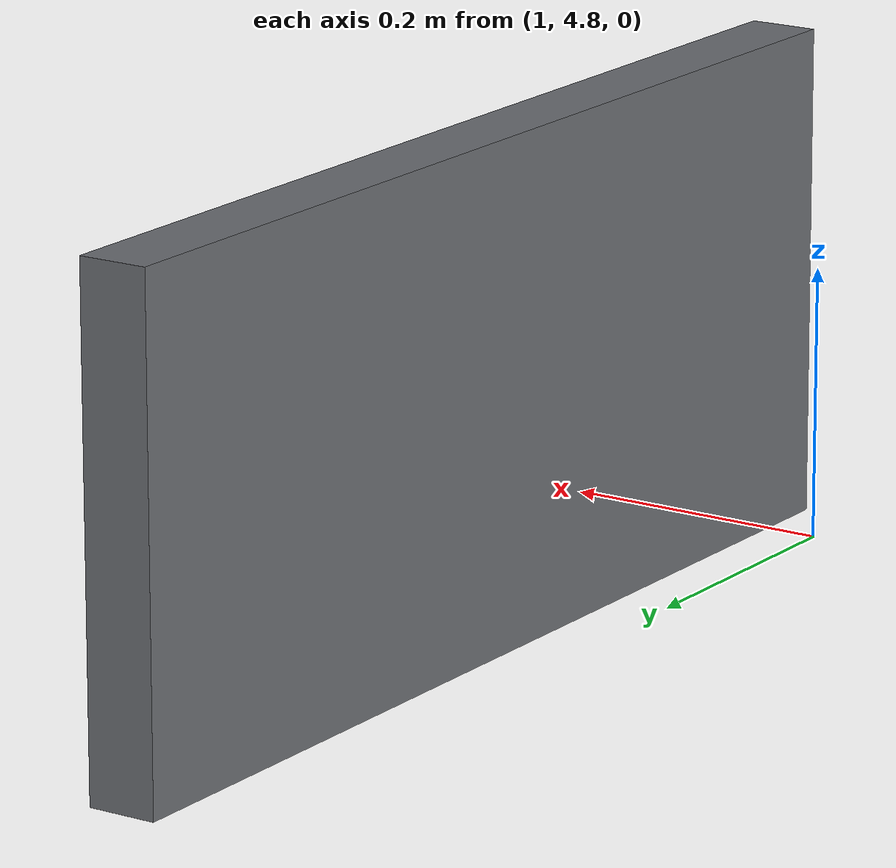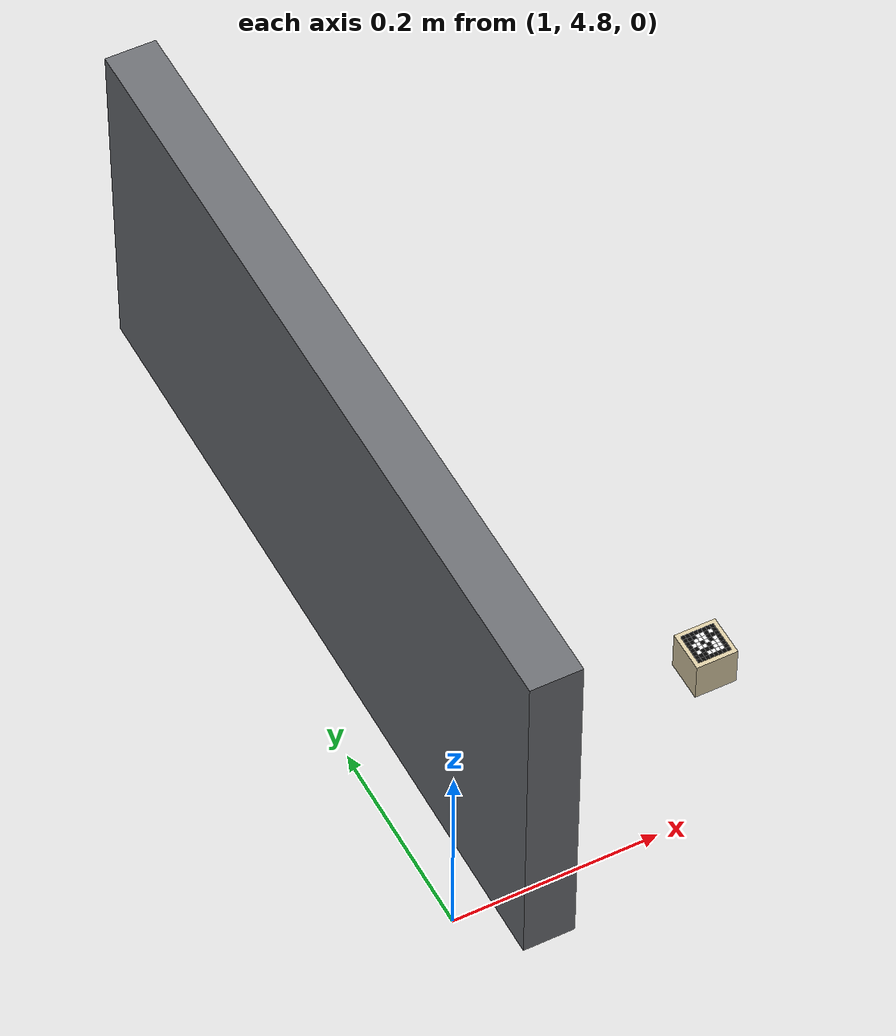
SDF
<sdf version="1.9">
 <world name="arena">
  <model name="map_wall_3">
   <static>true</static>
   <pose>1.06400 5.14500 0.18000 0 0 0.0000000</pose>
   <link name="body">
    <collision name="collision"><geometry><box><size>0.05000 0.80000 0.36000</size></box></geometry></collision>
    <visual name="appearance">
     <geometry><box><size>0.05000 0.80000 0.36000</size></box></geometry>
     <material><ambient>0.42 0.43 0.45 1</ambient><diffuse>0.42 0.43 0.45 1</diffuse></material>
    </visual>
   </link>
  </model>
  <model name="cube_4">
   <pose>1.09626 4.82973 0.18200 0 0 0</pose>
   <link name="body">
    <inertial>
     <mass>0.04</mass>
     <inertia>
      <ixx>0.000010667</ixx>
      <iyy>0.000010667</iyy>
      <izz>0.000010667</izz>
      <ixy>0</ixy>
      <ixz>0</ixz>
      <iyz>0</iyz>
     </inertia>
    </inertial>
    <collision name="cube">
     <geometry><box><size>0.04 0.04 0.04</size></box></geometry>
     <surface><friction><ode><mu>1.2</mu><mu2>1.2</mu2></ode></friction></surface>
    </collision>
    <visual name="cube_appearance">
     <geometry><box><size>0.04 0.04 0.04</size></box></geometry>
     <material><ambient>0.85 0.79 0.64 1</ambient><diffuse>0.85 0.79 0.64 1</diffuse></material>
    </visual>
    <visual name="tag_0_0">
     <pose>-0.0140 0.0140 0.0202 0 0 0</pose>
     <geometry><plane><normal>0 0 1</normal><size>0.004 0.004</size></plane></geometry>
     <material><ambient>0.01 0.01 0.01 1</ambient><diffuse>0.01 0.01 0.01 1</diffuse></material>
    </visual>
    <visual name="tag_0_1">
     <pose>-0.0100 0.0140 0.0202 0 0 0</pose>
     <geometry><plane><normal>0 0 1</normal><size>0.004 0.004</size></plane></geometry>
     <material><ambient>0.01 0.01 0.01 1</ambient><diffuse>0.01 0.01 0.01 1</diffuse></material>
    </visual>
    <visual name="tag_0_2">
     <pose>-0.0060 0.0140 0.0202 0 0 0</pose>
     <geometry><plane><normal>0 0 1</normal><size>0.004 0.004</size></plane></geometry>
     <material><ambient>0.01 0.01 0.01 1</ambient><diffuse>0.01 0.01 0.01 1</diffuse></material>
    </visual>
    <visual name="tag_0_3">
     <pose>-0.0020 0.0140 0.0202 0 0 0</pose>
     <geometry><plane><normal>0 0 1</normal><size>0.004 0.004</size></plane></geometry>
     <material><ambient>0.01 0.01 0.01 1</ambient><diffuse>0.01 0.01 0.01 1</diffuse></material>
    </visual>
    <visual name="tag_0_4">
     <pose>0.0020 0.0140 0.0202 0 0 0</pose>
     <geometry><plane><normal>0 0 1</normal><size>0.004 0.004</size></plane></geometry>
     <material><ambient>0.01 0.01 0.01 1</ambient><diffuse>0.01 0.01 0.01 1</diffuse></material>
    </visual>
    <visual name="tag_0_5">
     <pose>0.0060 0.0140 0.0202 0 0 0</pose>
     <geometry><plane><normal>0 0 1</normal><size>0.004 0.004</size></plane></geometry>
     <material><ambient>0.01 0.01 0.01 1</ambient><diffuse>0.01 0.01 0.01 1</diffuse></material>
    </visual>
    <visual name="tag_0_6">
     <pose>0.0100 0.0140 0.0202 0 0 0</pose>
     <geometry><plane><normal>0 0 1</normal><size>0.004 0.004</size></plane></geometry>
     <material><ambient>0.01 0.01 0.01 1</ambient><diffuse>0.01 0.01 0.01 1</diffuse></material>
    </visual>
    <visual name="tag_0_7">
     <pose>0.0140 0.0140 0.0202 0 0 0</pose>
     <geometry><plane><normal>0 0 1</normal><size>0.004 0.004</size></plane></geometry>
     <material><ambient>0.01 0.01 0.01 1</ambient><diffuse>0.01 0.01 0.01 1</diffuse></material>
    </visual>
    <visual name="tag_1_0">
     <pose>-0.0140 0.0100 0.0202 0 0 0</pose>
     <geometry><plane><normal>0 0 1</normal><size>0.004 0.004</size></plane></geometry>
     <material><ambient>0.01 0.01 0.01 1</ambient><diffuse>0.01 0.01 0.01 1</diffuse></material>
    </visual>
    <visual name="tag_1_1">
     <pose>-0.0100 0.0100 0.0202 0 0 0</pose>
     <geometry><plane><normal>0 0 1</normal><size>0.004 0.004</size></plane></geometry>
     <material><ambient>0.01 0.01 0.01 1</ambient><diffuse>0.01 0.01 0.01 1</diffuse></material>
    </visual>
    <visual name="tag_1_2">
     <pose>-0.0060 0.0100 0.0202 0 0 0</pose>
     <geometry><plane><normal>0 0 1</normal><size>0.004 0.004</size></plane></geometry>
     <material><ambient>0.95 0.95 0.95 1</ambient><diffuse>0.95 0.95 0.95 1</diffuse></material>
    </visual>
    <visual name="tag_1_3">
     <pose>-0.0020 0.0100 0.0202 0 0 0</pose>
     <geometry><plane><normal>0 0 1</normal><size>0.004 0.004</size></plane></geometry>
     <material><ambient>0.01 0.01 0.01 1</ambient><diffuse>0.01 0.01 0.01 1</diffuse></material>
    </visual>
    <visual name="tag_1_4">
     <pose>0.0020 0.0100 0.0202 0 0 0</pose>
     <geometry><plane><normal>0 0 1</normal><size>0.004 0.004</size></plane></geometry>
     <material><ambient>0.01 0.01 0.01 1</ambient><diffuse>0.01 0.01 0.01 1</diffuse></material>
    </visual>
    <visual name="tag_1_5">
     <pose>0.0060 0.0100 0.0202 0 0 0</pose>
     <geometry><plane><normal>0 0 1</normal><size>0.004 0.004</size></plane></geometry>
     <material><ambient>0.01 0.01 0.01 1</ambient><diffuse>0.01 0.01 0.01 1</diffuse></material>
    </visual>
    <visual name="tag_1_6">
     <pose>0.0100 0.0100 0.0202 0 0 0</pose>
     <geometry><plane><normal>0 0 1</normal><size>0.004 0.004</size></plane></geometry>
     <material><ambient>0.95 0.95 0.95 1</ambient><diffuse>0.95 0.95 0.95 1</diffuse></material>
    </visual>
    <visual name="tag_1_7">
     <pose>0.0140 0.0100 0.0202 0 0 0</pose>
     <geometry><plane><normal>0 0 1</normal><size>0.004 0.004</size></plane></geometry>
     <material><ambient>0.01 0.01 0.01 1</ambient><diffuse>0.01 0.01 0.01 1</diffuse></material>
    </visual>
    <visual name="tag_2_0">
     <pose>-0.0140 0.0060 0.0202 0 0 0</pose>
     <geometry><plane><normal>0 0 1</normal><size>0.004 0.004</size></plane></geometry>
     <material><ambient>0.01 0.01 0.01 1</ambient><diffuse>0.01 0.01 0.01 1</diffuse></material>
    </visual>
    <visual name="tag_2_1">
     <pose>-0.0100 0.0060 0.0202 0 0 0</pose>
     <geometry><plane><normal>0 0 1</normal><size>0.004 0.004</size></plane></geometry>
     <material><ambient>0.01 0.01 0.01 1</ambient><diffuse>0.01 0.01 0.01 1</diffuse></material>
    </visual>
    <visual name="tag_2_2">
     <pose>-0.0060 0.0060 0.0202 0 0 0</pose>
     <geometry><plane><normal>0 0 1</normal><size>0.004 0.004</size></plane></geometry>
     <material><ambient>0.01 0.01 0.01 1</ambient><diffuse>0.01 0.01 0.01 1</diffuse></material>
    </visual>
    <visual name="tag_2_3">
     <pose>-0.0020 0.0060 0.0202 0 0 0</pose>
     <geometry><plane><normal>0 0 1</normal><size>0.004 0.004</size></plane></geometry>
     <material><ambient>0.01 0.01 0.01 1</ambient><diffuse>0.01 0.01 0.01 1</diffuse></material>
    </visual>
    <visual name="tag_2_4">
     <pose>0.0020 0.0060 0.0202 0 0 0</pose>
     <geometry><plane><normal>0 0 1</normal><size>0.004 0.004</size></plane></geometry>
     <material><ambient>0.01 0.01 0.01 1</ambient><diffuse>0.01 0.01 0.01 1</diffuse></material>
    </visual>
    <visual name="tag_2_5">
     <pose>0.0060 0.0060 0.0202 0 0 0</pose>
     <geometry><plane><normal>0 0 1</normal><size>0.004 0.004</size></plane></geometry>
     <material><ambient>0.01 0.01 0.01 1</ambient><diffuse>0.01 0.01 0.01 1</diffuse></material>
    </visual>
    <visual name="tag_2_6">
     <pose>0.0100 0.0060 0.0202 0 0 0</pose>
     <geometry><plane><normal>0 0 1</normal><size>0.004 0.004</size></plane></geometry>
     <material><ambient>0.95 0.95 0.95 1</ambient><diffuse>0.95 0.95 0.95 1</diffuse></material>
    </visual>
    <visual name="tag_2_7">
     <pose>0.0140 0.0060 0.0202 0 0 0</pose>
     <geometry><plane><normal>0 0 1</normal><size>0.004 0.004</size></plane></geometry>
     <material><ambient>0.01 0.01 0.01 1</ambient><diffuse>0.01 0.01 0.01 1</diffuse></material>
    </visual>
    <visual name="tag_3_0">
     <pose>-0.0140 0.0020 0.0202 0 0 0</pose>
     <geometry><plane><normal>0 0 1</normal><size>0.004 0.004</size></plane></geometry>
     <material><ambient>0.01 0.01 0.01 1</ambient><diffuse>0.01 0.01 0.01 1</diffuse></material>
    </visual>
    <visual name="tag_3_1">
     <pose>-0.0100 0.0020 0.0202 0 0 0</pose>
     <geometry><plane><normal>0 0 1</normal><size>0.004 0.004</size></plane></geometry>
     <material><ambient>0.01 0.01 0.01 1</ambient><diffuse>0.01 0.01 0.01 1</diffuse></material>
    </visual>
    <visual name="tag_3_2">
     <pose>-0.0060 0.0020 0.0202 0 0 0</pose>
     <geometry><plane><normal>0 0 1</normal><size>0.004 0.004</size></plane></geometry>
     <material><ambient>0.95 0.95 0.95 1</ambient><diffuse>0.95 0.95 0.95 1</diffuse></material>
    </visual>
    <visual name="tag_3_3">
     <pose>-0.0020 0.0020 0.0202 0 0 0</pose>
     <geometry><plane><normal>0 0 1</normal><size>0.004 0.004</size></plane></geometry>
     <material><ambient>0.01 0.01 0.01 1</ambient><diffuse>0.01 0.01 0.01 1</diffuse></material>
    </visual>
    <visual name="tag_3_4">
     <pose>0.0020 0.0020 0.0202 0 0 0</pose>
     <geometry><plane><normal>0 0 1</normal><size>0.004 0.004</size></plane></geometry>
     <material><ambient>0.95 0.95 0.95 1</ambient><diffuse>0.95 0.95 0.95 1</diffuse></material>
    </visual>
    <visual name="tag_3_5">
     <pose>0.0060 0.0020 0.0202 0 0 0</pose>
     <geometry><plane><normal>0 0 1</normal><size>0.004 0.004</size></plane></geometry>
     <material><ambient>0.01 0.01 0.01 1</ambient><diffuse>0.01 0.01 0.01 1</diffuse></material>
    </visual>
    <visual name="tag_3_6">
     <pose>0.0100 0.0020 0.0202 0 0 0</pose>
     <geometry><plane><normal>0 0 1</normal><size>0.004 0.004</size></plane></geometry>
     <material><ambient>0.01 0.01 0.01 1</ambient><diffuse>0.01 0.01 0.01 1</diffuse></material>
    </visual>
    <visual name="tag_3_7">
     <pose>0.0140 0.0020 0.0202 0 0 0</pose>
     <geometry><plane><normal>0 0 1</normal><size>0.004 0.004</size></plane></geometry>
     <material><ambient>0.01 0.01 0.01 1</ambient><diffuse>0.01 0.01 0.01 1</diffuse></material>
    </visual>
    <visual name="tag_4_0">
     <pose>-0.0140 -0.0020 0.0202 0 0 0</pose>
     <geometry><plane><normal>0 0 1</normal><size>0.004 0.004</size></plane></geometry>
     <material><ambient>0.01 0.01 0.01 1</ambient><diffuse>0.01 0.01 0.01 1</diffuse></material>
    </visual>
    <visual name="tag_4_1">
     <pose>-0.0100 -0.0020 0.0202 0 0 0</pose>
     <geometry><plane><normal>0 0 1</normal><size>0.004 0.004</size></plane></geometry>
     <material><ambient>0.95 0.95 0.95 1</ambient><diffuse>0.95 0.95 0.95 1</diffuse></material>
    </visual>
    <visual name="tag_4_2">
     <pose>-0.0060 -0.0020 0.0202 0 0 0</pose>
     <geometry><plane><normal>0 0 1</normal><size>0.004 0.004</size></plane></geometry>
     <material><ambient>0.95 0.95 0.95 1</ambient><diffuse>0.95 0.95 0.95 1</diffuse></material>
    </visual>
    <visual name="tag_4_3">
     <pose>-0.0020 -0.0020 0.0202 0 0 0</pose>
     <geometry><plane><normal>0 0 1</normal><size>0.004 0.004</size></plane></geometry>
     <material><ambient>0.95 0.95 0.95 1</ambient><diffuse>0.95 0.95 0.95 1</diffuse></material>
    </visual>
    <visual name="tag_4_4">
     <pose>0.0020 -0.0020 0.0202 0 0 0</pose>
     <geometry><plane><normal>0 0 1</normal><size>0.004 0.004</size></plane></geometry>
     <material><ambient>0.95 0.95 0.95 1</ambient><diffuse>0.95 0.95 0.95 1</diffuse></material>
    </visual>
    <visual name="tag_4_5">
     <pose>0.0060 -0.0020 0.0202 0 0 0</pose>
     <geometry><plane><normal>0 0 1</normal><size>0.004 0.004</size></plane></geometry>
     <material><ambient>0.01 0.01 0.01 1</ambient><diffuse>0.01 0.01 0.01 1</diffuse></material>
    </visual>
    <visual name="tag_4_6">
     <pose>0.0100 -0.0020 0.0202 0 0 0</pose>
     <geometry><plane><normal>0 0 1</normal><size>0.004 0.004</size></plane></geometry>
     <material><ambient>0.95 0.95 0.95 1</ambient><diffuse>0.95 0.95 0.95 1</diffuse></material>
    </visual>
    <visual name="tag_4_7">
     <pose>0.0140 -0.0020 0.0202 0 0 0</pose>
     <geometry><plane><normal>0 0 1</normal><size>0.004 0.004</size></plane></geometry>
     <material><ambient>0.01 0.01 0.01 1</ambient><diffuse>0.01 0.01 0.01 1</diffuse></material>
    </visual>
    <visual name="tag_5_0">
     <pose>-0.0140 -0.0060 0.0202 0 0 0</pose>
     <geometry><plane><normal>0 0 1</normal><size>0.004 0.004</size></plane></geometry>
     <material><ambient>0.01 0.01 0.01 1</ambient><diffuse>0.01 0.01 0.01 1</diffuse></material>
    </visual>
    <visual name="tag_5_1">
     <pose>-0.0100 -0.0060 0.0202 0 0 0</pose>
     <geometry><plane><normal>0 0 1</normal><size>0.004 0.004</size></plane></geometry>
     <material><ambient>0.01 0.01 0.01 1</ambient><diffuse>0.01 0.01 0.01 1</diffuse></material>
    </visual>
    <visual name="tag_5_2">
     <pose>-0.0060 -0.0060 0.0202 0 0 0</pose>
     <geometry><plane><normal>0 0 1</normal><size>0.004 0.004</size></plane></geometry>
     <material><ambient>0.01 0.01 0.01 1</ambient><diffuse>0.01 0.01 0.01 1</diffuse></material>
    </visual>
    <visual name="tag_5_3">
     <pose>-0.0020 -0.0060 0.0202 0 0 0</pose>
     <geometry><plane><normal>0 0 1</normal><size>0.004 0.004</size></plane></geometry>
     <material><ambient>0.95 0.95 0.95 1</ambient><diffuse>0.95 0.95 0.95 1</diffuse></material>
    </visual>
    <visual name="tag_5_4">
     <pose>0.0020 -0.0060 0.0202 0 0 0</pose>
     <geometry><plane><normal>0 0 1</normal><size>0.004 0.004</size></plane></geometry>
     <material><ambient>0.95 0.95 0.95 1</ambient><diffuse>0.95 0.95 0.95 1</diffuse></material>
    </visual>
    <visual name="tag_5_5">
     <pose>0.0060 -0.0060 0.0202 0 0 0</pose>
     <geometry><plane><normal>0 0 1</normal><size>0.004 0.004</size></plane></geometry>
     <material><ambient>0.95 0.95 0.95 1</ambient><diffuse>0.95 0.95 0.95 1</diffuse></material>
    </visual>
    <visual name="tag_5_6">
     <pose>0.0100 -0.0060 0.0202 0 0 0</pose>
     <geometry><plane><normal>0 0 1</normal><size>0.004 0.004</size></plane></geometry>
     <material><ambient>0.95 0.95 0.95 1</ambient><diffuse>0.95 0.95 0.95 1</diffuse></material>
    </visual>
    <visual name="tag_5_7">
     <pose>0.0140 -0.0060 0.0202 0 0 0</pose>
     <geometry><plane><normal>0 0 1</normal><size>0.004 0.004</size></plane></geometry>
     <material><ambient>0.01 0.01 0.01 1</ambient><diffuse>0.01 0.01 0.01 1</diffuse></material>
    </visual>
    <visual name="tag_6_0">
     <pose>-0.0140 -0.0100 0.0202 0 0 0</pose>
     <geometry><plane><normal>0 0 1</normal><size>0.004 0.004</size></plane></geometry>
     <material><ambient>0.01 0.01 0.01 1</ambient><diffuse>0.01 0.01 0.01 1</diffuse></material>
    </visual>
    <visual name="tag_6_1">
     <pose>-0.0100 -0.0100 0.0202 0 0 0</pose>
     <geometry><plane><normal>0 0 1</normal><size>0.004 0.004</size></plane></geometry>
     <material><ambient>0.01 0.01 0.01 1</ambient><diffuse>0.01 0.01 0.01 1</diffuse></material>
    </visual>
    <visual name="tag_6_2">
     <pose>-0.0060 -0.0100 0.0202 0 0 0</pose>
     <geometry><plane><normal>0 0 1</normal><size>0.004 0.004</size></plane></geometry>
     <material><ambient>0.95 0.95 0.95 1</ambient><diffuse>0.95 0.95 0.95 1</diffuse></material>
    </visual>
    <visual name="tag_6_3">
     <pose>-0.0020 -0.0100 0.0202 0 0 0</pose>
     <geometry><plane><normal>0 0 1</normal><size>0.004 0.004</size></plane></geometry>
     <material><ambient>0.01 0.01 0.01 1</ambient><diffuse>0.01 0.01 0.01 1</diffuse></material>
    </visual>
    <visual name="tag_6_4">
     <pose>0.0020 -0.0100 0.0202 0 0 0</pose>
     <geometry><plane><normal>0 0 1</normal><size>0.004 0.004</size></plane></geometry>
     <material><ambient>0.95 0.95 0.95 1</ambient><diffuse>0.95 0.95 0.95 1</diffuse></material>
    </visual>
    <visual name="tag_6_5">
     <pose>0.0060 -0.0100 0.0202 0 0 0</pose>
     <geometry><plane><normal>0 0 1</normal><size>0.004 0.004</size></plane></geometry>
     <material><ambient>0.95 0.95 0.95 1</ambient><diffuse>0.95 0.95 0.95 1</diffuse></material>
    </visual>
    <visual name="tag_6_6">
     <pose>0.0100 -0.0100 0.0202 0 0 0</pose>
     <geometry><plane><normal>0 0 1</normal><size>0.004 0.004</size></plane></geometry>
     <material><ambient>0.95 0.95 0.95 1</ambient><diffuse>0.95 0.95 0.95 1</diffuse></material>
    </visual>
    <visual name="tag_6_7">
     <pose>0.0140 -0.0100 0.0202 0 0 0</pose>
     <geometry><plane><normal>0 0 1</normal><size>0.004 0.004</size></plane></geometry>
     <material><ambient>0.01 0.01 0.01 1</ambient><diffuse>0.01 0.01 0.01 1</diffuse></material>
    </visual>
    <visual name="tag_7_0">
     <pose>-0.0140 -0.0140 0.0202 0 0 0</pose>
     <geometry><plane><normal>0 0 1</normal><size>0.004 0.004</size></plane></geometry>
     <material><ambient>0.01 0.01 0.01 1</ambient><diffuse>0.01 0.01 0.01 1</diffuse></material>
    </visual>
    <visual name="tag_7_1">
     <pose>-0.0100 -0.0140 0.0202 0 0 0</pose>
     <geometry><plane><normal>0 0 1</normal><size>0.004 0.004</size></plane></geometry>
     <material><ambient>0.01 0.01 0.01 1</ambient><diffuse>0.01 0.01 0.01 1</diffuse></material>
    </visual>
    <visual name="tag_7_2">
     <pose>-0.0060 -0.0140 0.0202 0 0 0</pose>
     <geometry><plane><normal>0 0 1</normal><size>0.004 0.004</size></plane></geometry>
     <material><ambient>0.01 0.01 0.01 1</ambient><diffuse>0.01 0.01 0.01 1</diffuse></material>
    </visual>
    <visual name="tag_7_3">
     <pose>-0.0020 -0.0140 0.0202 0 0 0</pose>
     <geometry><plane><normal>0 0 1</normal><size>0.004 0.004</size></plane></geometry>
     <material><ambient>0.01 0.01 0.01 1</ambient><diffuse>0.01 0.01 0.01 1</diffuse></material>
    </visual>
    <visual name="tag_7_4">
     <pose>0.0020 -0.0140 0.0202 0 0 0</pose>
     <geometry><plane><normal>0 0 1</normal><size>0.004 0.004</size></plane></geometry>
     <material><ambient>0.01 0.01 0.01 1</ambient><diffuse>0.01 0.01 0.01 1</diffuse></material>
    </visual>
    <visual name="tag_7_5">
     <pose>0.0060 -0.0140 0.0202 0 0 0</pose>
     <geometry><plane><normal>0 0 1</normal><size>0.004 0.004</size></plane></geometry>
     <material><ambient>0.01 0.01 0.01 1</ambient><diffuse>0.01 0.01 0.01 1</diffuse></material>
    </visual>
    <visual name="tag_7_6">
     <pose>0.0100 -0.0140 0.0202 0 0 0</pose>
     <geometry><plane><normal>0 0 1</normal><size>0.004 0.004</size></plane></geometry>
     <material><ambient>0.01 0.01 0.01 1</ambient><diffuse>0.01 0.01 0.01 1</diffuse></material>
    </visual>
    <visual name="tag_7_7">
     <pose>0.0140 -0.0140 0.0202 0 0 0</pose>
     <geometry><plane><normal>0 0 1</normal><size>0.004 0.004</size></plane></geometry>
     <material><ambient>0.01 0.01 0.01 1</ambient><diffuse>0.01 0.01 0.01 1</diffuse></material>
    </visual>
   </link>
  </model>
  <model name="cube_5">
   <pose>1.25626 4.82986 0.18200 0 0 0</pose>
   <link name="body">
    <inertial>
     <mass>0.04</mass>
     <inertia>
      <ixx>0.000010667</ixx>
      <iyy>0.000010667</iyy>
      <izz>0.000010667</izz>
      <ixy>0</ixy>
      <ixz>0</ixz>
      <iyz>0</iyz>
     </inertia>
    </inertial>
    <collision name="cube">
     <geometry><box><size>0.04 0.04 0.04</size></box></geometry>
     <surface><friction><ode><mu>1.2</mu><mu2>1.2</mu2></ode></friction></surface>
    </collision>
    <visual name="cube_appearance">
     <geometry><box><size>0.04 0.04 0.04</size></box></geometry>
     <material><ambient>0.85 0.79 0.64 1</ambient><diffuse>0.85 0.79 0.64 1</diffuse></material>
    </visual>
    <visual name="tag_0_0">
     <pose>-0.0140 0.0140 0.0202 0 0 0</pose>
     <geometry><plane><normal>0 0 1</normal><size>0.004 0.004</size></plane></geometry>
     <material><ambient>0.01 0.01 0.01 1</ambient><diffuse>0.01 0.01 0.01 1</diffuse></material>
    </visual>
    <visual name="tag_0_1">
     <pose>-0.0100 0.0140 0.0202 0 0 0</pose>
     <geometry><plane><normal>0 0 1</normal><size>0.004 0.004</size></plane></geometry>
     <material><ambient>0.01 0.01 0.01 1</ambient><diffuse>0.01 0.01 0.01 1</diffuse></material>
    </visual>
    <visual name="tag_0_2">
     <pose>-0.0060 0.0140 0.0202 0 0 0</pose>
     <geometry><plane><normal>0 0 1</normal><size>0.004 0.004</size></plane></geometry>
     <material><ambient>0.01 0.01 0.01 1</ambient><diffuse>0.01 0.01 0.01 1</diffuse></material>
    </visual>
    <visual name="tag_0_3">
     <pose>-0.0020 0.0140 0.0202 0 0 0</pose>
     <geometry><plane><normal>0 0 1</normal><size>0.004 0.004</size></plane></geometry>
     <material><ambient>0.01 0.01 0.01 1</ambient><diffuse>0.01 0.01 0.01 1</diffuse></material>
    </visual>
    <visual name="tag_0_4">
     <pose>0.0020 0.0140 0.0202 0 0 0</pose>
     <geometry><plane><normal>0 0 1</normal><size>0.004 0.004</size></plane></geometry>
     <material><ambient>0.01 0.01 0.01 1</ambient><diffuse>0.01 0.01 0.01 1</diffuse></material>
    </visual>
    <visual name="tag_0_5">
     <pose>0.0060 0.0140 0.0202 0 0 0</pose>
     <geometry><plane><normal>0 0 1</normal><size>0.004 0.004</size></plane></geometry>
     <material><ambient>0.01 0.01 0.01 1</ambient><diffuse>0.01 0.01 0.01 1</diffuse></material>
    </visual>
    <visual name="tag_0_6">
     <pose>0.0100 0.0140 0.0202 0 0 0</pose>
     <geometry><plane><normal>0 0 1</normal><size>0.004 0.004</size></plane></geometry>
     <material><ambient>0.01 0.01 0.01 1</ambient><diffuse>0.01 0.01 0.01 1</diffuse></material>
    </visual>
    <visual name="tag_0_7">
     <pose>0.0140 0.0140 0.0202 0 0 0</pose>
     <geometry><plane><normal>0 0 1</normal><size>0.004 0.004</size></plane></geometry>
     <material><ambient>0.01 0.01 0.01 1</ambient><diffuse>0.01 0.01 0.01 1</diffuse></material>
    </visual>
    <visual name="tag_1_0">
     <pose>-0.0140 0.0100 0.0202 0 0 0</pose>
     <geometry><plane><normal>0 0 1</normal><size>0.004 0.004</size></plane></geometry>
     <material><ambient>0.01 0.01 0.01 1</ambient><diffuse>0.01 0.01 0.01 1</diffuse></material>
    </visual>
    <visual name="tag_1_1">
     <pose>-0.0100 0.0100 0.0202 0 0 0</pose>
     <geometry><plane><normal>0 0 1</normal><size>0.004 0.004</size></plane></geometry>
     <material><ambient>0.01 0.01 0.01 1</ambient><diffuse>0.01 0.01 0.01 1</diffuse></material>
    </visual>
    <visual name="tag_1_2">
     <pose>-0.0060 0.0100 0.0202 0 0 0</pose>
     <geometry><plane><normal>0 0 1</normal><size>0.004 0.004</size></plane></geometry>
     <material><ambient>0.01 0.01 0.01 1</ambient><diffuse>0.01 0.01 0.01 1</diffuse></material>
    </visual>
    <visual name="tag_1_3">
     <pose>-0.0020 0.0100 0.0202 0 0 0</pose>
     <geometry><plane><normal>0 0 1</normal><size>0.004 0.004</size></plane></geometry>
     <material><ambient>0.95 0.95 0.95 1</ambient><diffuse>0.95 0.95 0.95 1</diffuse></material>
    </visual>
    <visual name="tag_1_4">
     <pose>0.0020 0.0100 0.0202 0 0 0</pose>
     <geometry><plane><normal>0 0 1</normal><size>0.004 0.004</size></plane></geometry>
     <material><ambient>0.95 0.95 0.95 1</ambient><diffuse>0.95 0.95 0.95 1</diffuse></material>
    </visual>
    <visual name="tag_1_5">
     <pose>0.0060 0.0100 0.0202 0 0 0</pose>
     <geometry><plane><normal>0 0 1</normal><size>0.004 0.004</size></plane></geometry>
     <material><ambient>0.01 0.01 0.01 1</ambient><diffuse>0.01 0.01 0.01 1</diffuse></material>
    </visual>
    <visual name="tag_1_6">
     <pose>0.0100 0.0100 0.0202 0 0 0</pose>
     <geometry><plane><normal>0 0 1</normal><size>0.004 0.004</size></plane></geometry>
     <material><ambient>0.95 0.95 0.95 1</ambient><diffuse>0.95 0.95 0.95 1</diffuse></material>
    </visual>
    <visual name="tag_1_7">
     <pose>0.0140 0.0100 0.0202 0 0 0</pose>
     <geometry><plane><normal>0 0 1</normal><size>0.004 0.004</size></plane></geometry>
     <material><ambient>0.01 0.01 0.01 1</ambient><diffuse>0.01 0.01 0.01 1</diffuse></material>
    </visual>
    <visual name="tag_2_0">
     <pose>-0.0140 0.0060 0.0202 0 0 0</pose>
     <geometry><plane><normal>0 0 1</normal><size>0.004 0.004</size></plane></geometry>
     <material><ambient>0.01 0.01 0.01 1</ambient><diffuse>0.01 0.01 0.01 1</diffuse></material>
    </visual>
    <visual name="tag_2_1">
     <pose>-0.0100 0.0060 0.0202 0 0 0</pose>
     <geometry><plane><normal>0 0 1</normal><size>0.004 0.004</size></plane></geometry>
     <material><ambient>0.01 0.01 0.01 1</ambient><diffuse>0.01 0.01 0.01 1</diffuse></material>
    </visual>
    <visual name="tag_2_2">
     <pose>-0.0060 0.0060 0.0202 0 0 0</pose>
     <geometry><plane><normal>0 0 1</normal><size>0.004 0.004</size></plane></geometry>
     <material><ambient>0.95 0.95 0.95 1</ambient><diffuse>0.95 0.95 0.95 1</diffuse></material>
    </visual>
    <visual name="tag_2_3">
     <pose>-0.0020 0.0060 0.0202 0 0 0</pose>
     <geometry><plane><normal>0 0 1</normal><size>0.004 0.004</size></plane></geometry>
     <material><ambient>0.95 0.95 0.95 1</ambient><diffuse>0.95 0.95 0.95 1</diffuse></material>
    </visual>
    <visual name="tag_2_4">
     <pose>0.0020 0.0060 0.0202 0 0 0</pose>
     <geometry><plane><normal>0 0 1</normal><size>0.004 0.004</size></plane></geometry>
     <material><ambient>0.95 0.95 0.95 1</ambient><diffuse>0.95 0.95 0.95 1</diffuse></material>
    </visual>
    <visual name="tag_2_5">
     <pose>0.0060 0.0060 0.0202 0 0 0</pose>
     <geometry><plane><normal>0 0 1</normal><size>0.004 0.004</size></plane></geometry>
     <material><ambient>0.01 0.01 0.01 1</ambient><diffuse>0.01 0.01 0.01 1</diffuse></material>
    </visual>
    <visual name="tag_2_6">
     <pose>0.0100 0.0060 0.0202 0 0 0</pose>
     <geometry><plane><normal>0 0 1</normal><size>0.004 0.004</size></plane></geometry>
     <material><ambient>0.01 0.01 0.01 1</ambient><diffuse>0.01 0.01 0.01 1</diffuse></material>
    </visual>
    <visual name="tag_2_7">
     <pose>0.0140 0.0060 0.0202 0 0 0</pose>
     <geometry><plane><normal>0 0 1</normal><size>0.004 0.004</size></plane></geometry>
     <material><ambient>0.01 0.01 0.01 1</ambient><diffuse>0.01 0.01 0.01 1</diffuse></material>
    </visual>
    <visual name="tag_3_0">
     <pose>-0.0140 0.0020 0.0202 0 0 0</pose>
     <geometry><plane><normal>0 0 1</normal><size>0.004 0.004</size></plane></geometry>
     <material><ambient>0.01 0.01 0.01 1</ambient><diffuse>0.01 0.01 0.01 1</diffuse></material>
    </visual>
    <visual name="tag_3_1">
     <pose>-0.0100 0.0020 0.0202 0 0 0</pose>
     <geometry><plane><normal>0 0 1</normal><size>0.004 0.004</size></plane></geometry>
     <material><ambient>0.95 0.95 0.95 1</ambient><diffuse>0.95 0.95 0.95 1</diffuse></material>
    </visual>
    <visual name="tag_3_2">
     <pose>-0.0060 0.0020 0.0202 0 0 0</pose>
     <geometry><plane><normal>0 0 1</normal><size>0.004 0.004</size></plane></geometry>
     <material><ambient>0.95 0.95 0.95 1</ambient><diffuse>0.95 0.95 0.95 1</diffuse></material>
    </visual>
    <visual name="tag_3_3">
     <pose>-0.0020 0.0020 0.0202 0 0 0</pose>
     <geometry><plane><normal>0 0 1</normal><size>0.004 0.004</size></plane></geometry>
     <material><ambient>0.01 0.01 0.01 1</ambient><diffuse>0.01 0.01 0.01 1</diffuse></material>
    </visual>
    <visual name="tag_3_4">
     <pose>0.0020 0.0020 0.0202 0 0 0</pose>
     <geometry><plane><normal>0 0 1</normal><size>0.004 0.004</size></plane></geometry>
     <material><ambient>0.95 0.95 0.95 1</ambient><diffuse>0.95 0.95 0.95 1</diffuse></material>
    </visual>
    <visual name="tag_3_5">
     <pose>0.0060 0.0020 0.0202 0 0 0</pose>
     <geometry><plane><normal>0 0 1</normal><size>0.004 0.004</size></plane></geometry>
     <material><ambient>0.01 0.01 0.01 1</ambient><diffuse>0.01 0.01 0.01 1</diffuse></material>
    </visual>
    <visual name="tag_3_6">
     <pose>0.0100 0.0020 0.0202 0 0 0</pose>
     <geometry><plane><normal>0 0 1</normal><size>0.004 0.004</size></plane></geometry>
     <material><ambient>0.95 0.95 0.95 1</ambient><diffuse>0.95 0.95 0.95 1</diffuse></material>
    </visual>
    <visual name="tag_3_7">
     <pose>0.0140 0.0020 0.0202 0 0 0</pose>
     <geometry><plane><normal>0 0 1</normal><size>0.004 0.004</size></plane></geometry>
     <material><ambient>0.01 0.01 0.01 1</ambient><diffuse>0.01 0.01 0.01 1</diffuse></material>
    </visual>
    <visual name="tag_4_0">
     <pose>-0.0140 -0.0020 0.0202 0 0 0</pose>
     <geometry><plane><normal>0 0 1</normal><size>0.004 0.004</size></plane></geometry>
     <material><ambient>0.01 0.01 0.01 1</ambient><diffuse>0.01 0.01 0.01 1</diffuse></material>
    </visual>
    <visual name="tag_4_1">
     <pose>-0.0100 -0.0020 0.0202 0 0 0</pose>
     <geometry><plane><normal>0 0 1</normal><size>0.004 0.004</size></plane></geometry>
     <material><ambient>0.01 0.01 0.01 1</ambient><diffuse>0.01 0.01 0.01 1</diffuse></material>
    </visual>
    <visual name="tag_4_2">
     <pose>-0.0060 -0.0020 0.0202 0 0 0</pose>
     <geometry><plane><normal>0 0 1</normal><size>0.004 0.004</size></plane></geometry>
     <material><ambient>0.95 0.95 0.95 1</ambient><diffuse>0.95 0.95 0.95 1</diffuse></material>
    </visual>
    <visual name="tag_4_3">
     <pose>-0.0020 -0.0020 0.0202 0 0 0</pose>
     <geometry><plane><normal>0 0 1</normal><size>0.004 0.004</size></plane></geometry>
     <material><ambient>0.95 0.95 0.95 1</ambient><diffuse>0.95 0.95 0.95 1</diffuse></material>
    </visual>
    <visual name="tag_4_4">
     <pose>0.0020 -0.0020 0.0202 0 0 0</pose>
     <geometry><plane><normal>0 0 1</normal><size>0.004 0.004</size></plane></geometry>
     <material><ambient>0.01 0.01 0.01 1</ambient><diffuse>0.01 0.01 0.01 1</diffuse></material>
    </visual>
    <visual name="tag_4_5">
     <pose>0.0060 -0.0020 0.0202 0 0 0</pose>
     <geometry><plane><normal>0 0 1</normal><size>0.004 0.004</size></plane></geometry>
     <material><ambient>0.95 0.95 0.95 1</ambient><diffuse>0.95 0.95 0.95 1</diffuse></material>
    </visual>
    <visual name="tag_4_6">
     <pose>0.0100 -0.0020 0.0202 0 0 0</pose>
     <geometry><plane><normal>0 0 1</normal><size>0.004 0.004</size></plane></geometry>
     <material><ambient>0.95 0.95 0.95 1</ambient><diffuse>0.95 0.95 0.95 1</diffuse></material>
    </visual>
    <visual name="tag_4_7">
     <pose>0.0140 -0.0020 0.0202 0 0 0</pose>
     <geometry><plane><normal>0 0 1</normal><size>0.004 0.004</size></plane></geometry>
     <material><ambient>0.01 0.01 0.01 1</ambient><diffuse>0.01 0.01 0.01 1</diffuse></material>
    </visual>
    <visual name="tag_5_0">
     <pose>-0.0140 -0.0060 0.0202 0 0 0</pose>
     <geometry><plane><normal>0 0 1</normal><size>0.004 0.004</size></plane></geometry>
     <material><ambient>0.01 0.01 0.01 1</ambient><diffuse>0.01 0.01 0.01 1</diffuse></material>
    </visual>
    <visual name="tag_5_1">
     <pose>-0.0100 -0.0060 0.0202 0 0 0</pose>
     <geometry><plane><normal>0 0 1</normal><size>0.004 0.004</size></plane></geometry>
     <material><ambient>0.95 0.95 0.95 1</ambient><diffuse>0.95 0.95 0.95 1</diffuse></material>
    </visual>
    <visual name="tag_5_2">
     <pose>-0.0060 -0.0060 0.0202 0 0 0</pose>
     <geometry><plane><normal>0 0 1</normal><size>0.004 0.004</size></plane></geometry>
     <material><ambient>0.01 0.01 0.01 1</ambient><diffuse>0.01 0.01 0.01 1</diffuse></material>
    </visual>
    <visual name="tag_5_3">
     <pose>-0.0020 -0.0060 0.0202 0 0 0</pose>
     <geometry><plane><normal>0 0 1</normal><size>0.004 0.004</size></plane></geometry>
     <material><ambient>0.01 0.01 0.01 1</ambient><diffuse>0.01 0.01 0.01 1</diffuse></material>
    </visual>
    <visual name="tag_5_4">
     <pose>0.0020 -0.0060 0.0202 0 0 0</pose>
     <geometry><plane><normal>0 0 1</normal><size>0.004 0.004</size></plane></geometry>
     <material><ambient>0.01 0.01 0.01 1</ambient><diffuse>0.01 0.01 0.01 1</diffuse></material>
    </visual>
    <visual name="tag_5_5">
     <pose>0.0060 -0.0060 0.0202 0 0 0</pose>
     <geometry><plane><normal>0 0 1</normal><size>0.004 0.004</size></plane></geometry>
     <material><ambient>0.95 0.95 0.95 1</ambient><diffuse>0.95 0.95 0.95 1</diffuse></material>
    </visual>
    <visual name="tag_5_6">
     <pose>0.0100 -0.0060 0.0202 0 0 0</pose>
     <geometry><plane><normal>0 0 1</normal><size>0.004 0.004</size></plane></geometry>
     <material><ambient>0.95 0.95 0.95 1</ambient><diffuse>0.95 0.95 0.95 1</diffuse></material>
    </visual>
    <visual name="tag_5_7">
     <pose>0.0140 -0.0060 0.0202 0 0 0</pose>
     <geometry><plane><normal>0 0 1</normal><size>0.004 0.004</size></plane></geometry>
     <material><ambient>0.01 0.01 0.01 1</ambient><diffuse>0.01 0.01 0.01 1</diffuse></material>
    </visual>
    <visual name="tag_6_0">
     <pose>-0.0140 -0.0100 0.0202 0 0 0</pose>
     <geometry><plane><normal>0 0 1</normal><size>0.004 0.004</size></plane></geometry>
     <material><ambient>0.01 0.01 0.01 1</ambient><diffuse>0.01 0.01 0.01 1</diffuse></material>
    </visual>
    <visual name="tag_6_1">
     <pose>-0.0100 -0.0100 0.0202 0 0 0</pose>
     <geometry><plane><normal>0 0 1</normal><size>0.004 0.004</size></plane></geometry>
     <material><ambient>0.01 0.01 0.01 1</ambient><diffuse>0.01 0.01 0.01 1</diffuse></material>
    </visual>
    <visual name="tag_6_2">
     <pose>-0.0060 -0.0100 0.0202 0 0 0</pose>
     <geometry><plane><normal>0 0 1</normal><size>0.004 0.004</size></plane></geometry>
     <material><ambient>0.01 0.01 0.01 1</ambient><diffuse>0.01 0.01 0.01 1</diffuse></material>
    </visual>
    <visual name="tag_6_3">
     <pose>-0.0020 -0.0100 0.0202 0 0 0</pose>
     <geometry><plane><normal>0 0 1</normal><size>0.004 0.004</size></plane></geometry>
     <material><ambient>0.95 0.95 0.95 1</ambient><diffuse>0.95 0.95 0.95 1</diffuse></material>
    </visual>
    <visual name="tag_6_4">
     <pose>0.0020 -0.0100 0.0202 0 0 0</pose>
     <geometry><plane><normal>0 0 1</normal><size>0.004 0.004</size></plane></geometry>
     <material><ambient>0.95 0.95 0.95 1</ambient><diffuse>0.95 0.95 0.95 1</diffuse></material>
    </visual>
    <visual name="tag_6_5">
     <pose>0.0060 -0.0100 0.0202 0 0 0</pose>
     <geometry><plane><normal>0 0 1</normal><size>0.004 0.004</size></plane></geometry>
     <material><ambient>0.95 0.95 0.95 1</ambient><diffuse>0.95 0.95 0.95 1</diffuse></material>
    </visual>
    <visual name="tag_6_6">
     <pose>0.0100 -0.0100 0.0202 0 0 0</pose>
     <geometry><plane><normal>0 0 1</normal><size>0.004 0.004</size></plane></geometry>
     <material><ambient>0.95 0.95 0.95 1</ambient><diffuse>0.95 0.95 0.95 1</diffuse></material>
    </visual>
    <visual name="tag_6_7">
     <pose>0.0140 -0.0100 0.0202 0 0 0</pose>
     <geometry><plane><normal>0 0 1</normal><size>0.004 0.004</size></plane></geometry>
     <material><ambient>0.01 0.01 0.01 1</ambient><diffuse>0.01 0.01 0.01 1</diffuse></material>
    </visual>
    <visual name="tag_7_0">
     <pose>-0.0140 -0.0140 0.0202 0 0 0</pose>
     <geometry><plane><normal>0 0 1</normal><size>0.004 0.004</size></plane></geometry>
     <material><ambient>0.01 0.01 0.01 1</ambient><diffuse>0.01 0.01 0.01 1</diffuse></material>
    </visual>
    <visual name="tag_7_1">
     <pose>-0.0100 -0.0140 0.0202 0 0 0</pose>
     <geometry><plane><normal>0 0 1</normal><size>0.004 0.004</size></plane></geometry>
     <material><ambient>0.01 0.01 0.01 1</ambient><diffuse>0.01 0.01 0.01 1</diffuse></material>
    </visual>
    <visual name="tag_7_2">
     <pose>-0.0060 -0.0140 0.0202 0 0 0</pose>
     <geometry><plane><normal>0 0 1</normal><size>0.004 0.004</size></plane></geometry>
     <material><ambient>0.01 0.01 0.01 1</ambient><diffuse>0.01 0.01 0.01 1</diffuse></material>
    </visual>
    <visual name="tag_7_3">
     <pose>-0.0020 -0.0140 0.0202 0 0 0</pose>
     <geometry><plane><normal>0 0 1</normal><size>0.004 0.004</size></plane></geometry>
     <material><ambient>0.01 0.01 0.01 1</ambient><diffuse>0.01 0.01 0.01 1</diffuse></material>
    </visual>
    <visual name="tag_7_4">
     <pose>0.0020 -0.0140 0.0202 0 0 0</pose>
     <geometry><plane><normal>0 0 1</normal><size>0.004 0.004</size></plane></geometry>
     <material><ambient>0.01 0.01 0.01 1</ambient><diffuse>0.01 0.01 0.01 1</diffuse></material>
    </visual>
    <visual name="tag_7_5">
     <pose>0.0060 -0.0140 0.0202 0 0 0</pose>
     <geometry><plane><normal>0 0 1</normal><size>0.004 0.004</size></plane></geometry>
     <material><ambient>0.01 0.01 0.01 1</ambient><diffuse>0.01 0.01 0.01 1</diffuse></material>
    </visual>
    <visual name="tag_7_6">
     <pose>0.0100 -0.0140 0.0202 0 0 0</pose>
     <geometry><plane><normal>0 0 1</normal><size>0.004 0.004</size></plane></geometry>
     <material><ambient>0.01 0.01 0.01 1</ambient><diffuse>0.01 0.01 0.01 1</diffuse></material>
    </visual>
    <visual name="tag_7_7">
     <pose>0.0140 -0.0140 0.0202 0 0 0</pose>
     <geometry><plane><normal>0 0 1</normal><size>0.004 0.004</size></plane></geometry>
     <material><ambient>0.01 0.01 0.01 1</ambient><diffuse>0.01 0.01 0.01 1</diffuse></material>
    </visual>
   </link>
  </model>
 </world>
</sdf>
